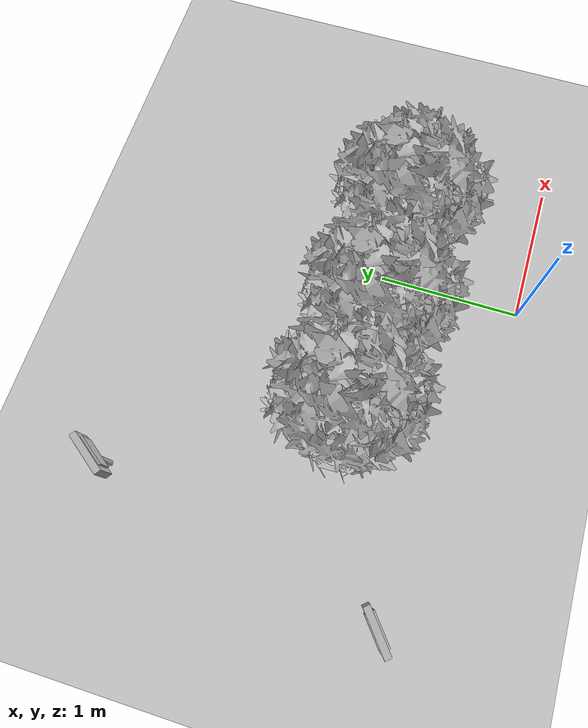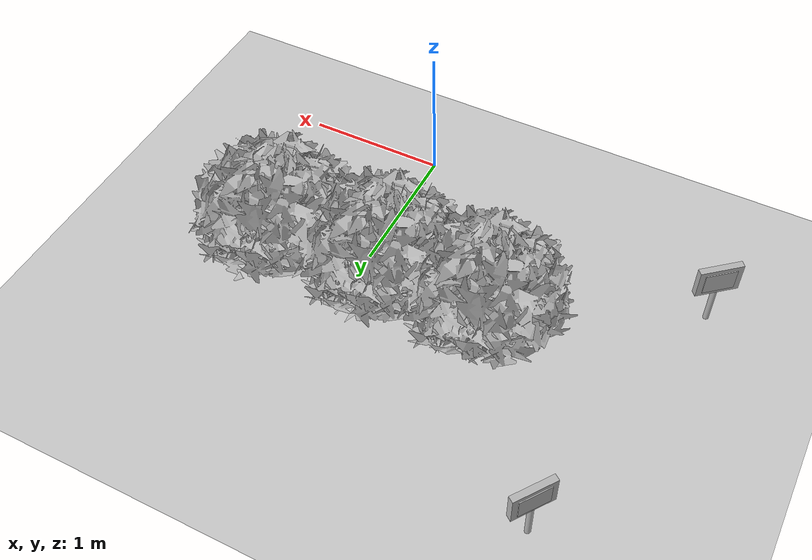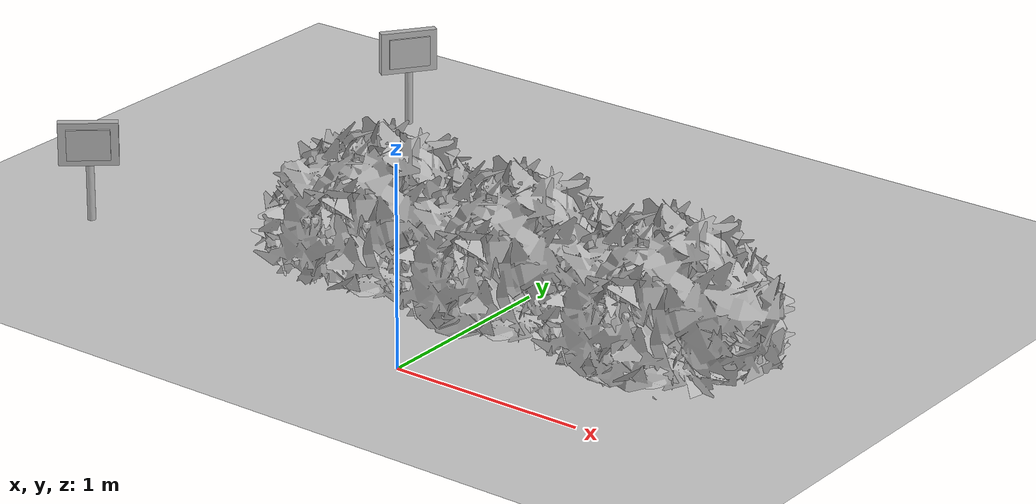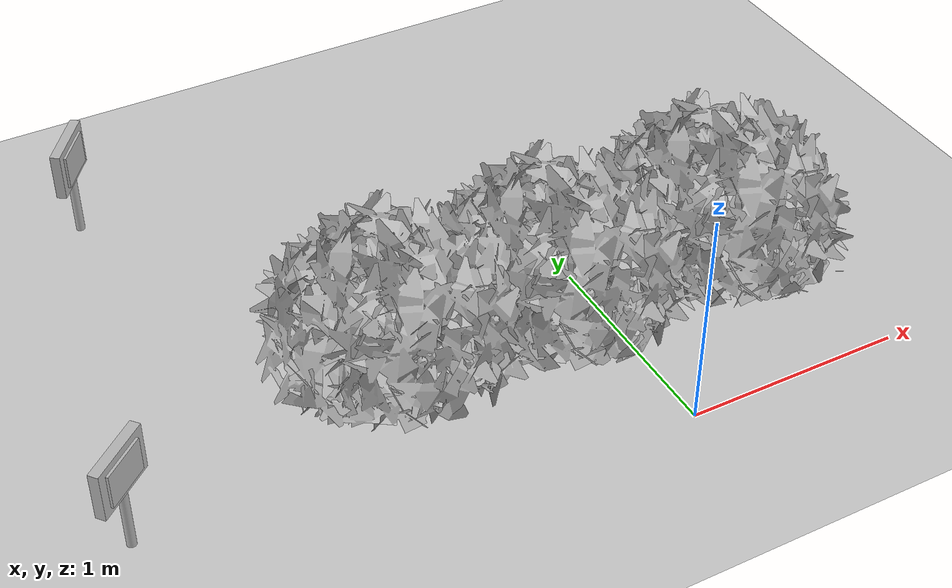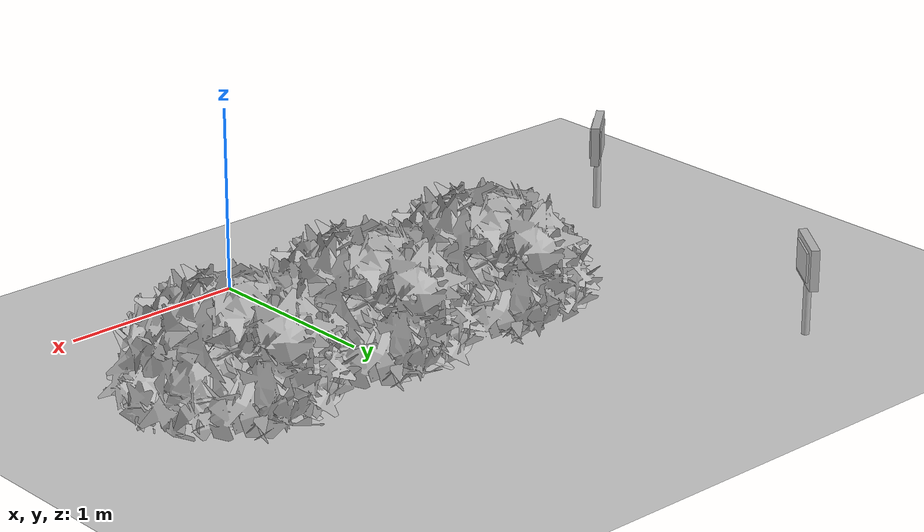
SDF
<sdf version="1.7">
 <world name="default">
  <model name="ground_plane">
   <static>1</static>
   <link name="link">
    <collision name="collision">
     <geometry><plane><normal>0 0 1</normal><size>100 100</size></plane></geometry>
     <surface><friction><ode><mu>100</mu><mu2>50</mu2></ode></friction></surface>
    </collision>
    <visual name="visual">
     <cast_shadows>0</cast_shadows>
     <geometry><plane><normal>0 0 1</normal><size>100 100</size></plane></geometry>
     <material>
      <script><uri>file://media/materials/scripts/gazebo.material</uri><name>Gazebo/Grey</name></script>
     </material>
    </visual>
   </link>
  </model>
  <model name="abbfre">
   <link name="link_0">
    <inertial>
     <mass>1</mass>
     <inertia>
      <ixx>0.166667</ixx>
      <ixy>0</ixy>
      <ixz>0</ixz>
      <iyy>0.166667</iyy>
      <iyz>0</iyz>
      <izz>0.166667</izz>
     </inertia>
    </inertial>
    <pose>0 0 -0 1.60917 -0 0</pose>
    <visual name="visual">
     <geometry><mesh><uri>model://abbfre/meshes/arbufres.obj</uri><scale>1 1 1</scale></mesh></geometry>
    </visual>
    <collision name="collision">
     <geometry><mesh><uri>model://abbfre/meshes/arbufres.obj</uri><scale>1 1 1</scale></mesh></geometry>
     <surface>
      <friction>
       <ode><mu>1</mu><mu2>1</mu2><fdir1>0 0 0</fdir1><slip1>0</slip1><slip2>0</slip2></ode>
       <torsional>
        <coefficient>1</coefficient>
        <patch_radius>0</patch_radius>
        <surface_radius>0</surface_radius>
        <use_patch_radius>1</use_patch_radius>
        <ode><slip>0</slip></ode>
       </torsional>
      </friction>
      <bounce><restitution_coefficient>0</restitution_coefficient><threshold>1e+06</threshold></bounce>
      <contact>
       <collide_without_contact>0</collide_without_contact>
       <collide_without_contact_bitmask>1</collide_without_contact_bitmask>
       <collide_bitmask>1</collide_bitmask>
       <ode>
        <soft_cfm>0</soft_cfm>
        <soft_erp>0.2</soft_erp>
        <kp>1e+13</kp>
        <kd>1</kd>
        <max_vel>0.01</max_vel>
        <min_depth>0</min_depth>
       </ode>
       <bullet>
        <split_impulse>1</split_impulse>
        <split_impulse_penetration_threshold>-0.01</split_impulse_penetration_threshold>
        <soft_cfm>0</soft_cfm>
        <soft_erp>0.2</soft_erp>
        <kp>1e+13</kp>
        <kd>1</kd>
       </bullet>
      </contact>
     </surface>
    </collision>
   </link>
   <static>1</static>
   <pose>-0.04815 1.09701 0 0 -0 0</pose>
  </model>
  <model name="letrero_fresa_0">
   <link name="link_0">
    <inertial>
     <mass>0.00543151</mass>
     <inertia>
      <ixx>4.90351e-06</ixx>
      <ixy>0</ixy>
      <ixz>0</ixz>
      <iyy>4.90351e-06</iyy>
      <iyz>0</iyz>
      <izz>1.12837e-07</izz>
     </inertia>
    </inertial>
    <pose>0.002372 -0.000902 -0.178803 0 -0 0</pose>
    <visual name="visual">
     <geometry><cylinder><radius>0.0203836</radius><length>0.327243</length></cylinder></geometry>
     <material>
      <lighting>1</lighting>
      <script>
       <uri>model://letrero_fresa/madera/scripts</uri>
       <uri>model://letrero_fresa/madera/textures</uri>
       <name>textur/madera</name>
      </script>
      <shader type="pixel"/>
      <emissive>0 0 0 1</emissive>
     </material>
    </visual>
    <collision name="collision">
     <geometry><cylinder><radius>0.020384</radius><length>0.327243</length></cylinder></geometry>
     <surface>
      <friction>
       <ode><mu>1</mu><mu2>1</mu2><fdir1>0 0 0</fdir1><slip1>0</slip1><slip2>0</slip2></ode>
       <torsional>
        <coefficient>1</coefficient>
        <patch_radius>0</patch_radius>
        <surface_radius>0</surface_radius>
        <use_patch_radius>1</use_patch_radius>
        <ode><slip>0</slip></ode>
       </torsional>
      </friction>
      <bounce><restitution_coefficient>0</restitution_coefficient><threshold>1e+06</threshold></bounce>
      <contact>
       <collide_without_contact>0</collide_without_contact>
       <collide_without_contact_bitmask>1</collide_without_contact_bitmask>
       <collide_bitmask>1</collide_bitmask>
       <ode>
        <soft_cfm>0</soft_cfm>
        <soft_erp>0.2</soft_erp>
        <kp>1e+13</kp>
        <kd>1</kd>
        <max_vel>0.01</max_vel>
        <min_depth>0</min_depth>
       </ode>
       <bullet>
        <split_impulse>1</split_impulse>
        <split_impulse_penetration_threshold>-0.01</split_impulse_penetration_threshold>
        <soft_cfm>0</soft_cfm>
        <soft_erp>0.2</soft_erp>
        <kp>1e+13</kp>
        <kd>1</kd>
       </bullet>
      </contact>
     </surface>
    </collision>
   </link>
   <link name="link_1">
    <inertial>
     <mass>0.00299633</mass>
     <inertia>
      <ixx>1.27855e-05</ixx>
      <ixy>0</ixy>
      <ixz>0</ixz>
      <iyy>3.42923e-05</iyy>
      <iyz>0</iyz>
      <izz>2.25402e-05</izz>
     </inertia>
    </inertial>
    <pose>-0.001685 -0.003559 0.089666 0 -0 0</pose>
    <visual name="visual">
     <geometry><box><size>0.296988 0.04549 0.221665</size></box></geometry>
     <material>
      <lighting>1</lighting>
      <script>
       <uri>model://letrero_fresa/madera/scripts</uri>
       <uri>model://letrero_fresa/madera/textures</uri>
       <name>textur/madera</name>
      </script>
      <shader type="pixel"/>
      <emissive>0 0 0 1</emissive>
     </material>
    </visual>
    <collision name="collision">
     <geometry><box><size>0.296988 0.04549 0.221665</size></box></geometry>
     <surface>
      <friction>
       <ode><mu>1</mu><mu2>1</mu2><fdir1>0 0 0</fdir1><slip1>0</slip1><slip2>0</slip2></ode>
       <torsional>
        <coefficient>1</coefficient>
        <patch_radius>0</patch_radius>
        <surface_radius>0</surface_radius>
        <use_patch_radius>1</use_patch_radius>
        <ode><slip>0</slip></ode>
       </torsional>
      </friction>
      <bounce><restitution_coefficient>0</restitution_coefficient><threshold>1e+06</threshold></bounce>
      <contact>
       <collide_without_contact>0</collide_without_contact>
       <collide_without_contact_bitmask>1</collide_without_contact_bitmask>
       <collide_bitmask>1</collide_bitmask>
       <ode>
        <soft_cfm>0</soft_cfm>
        <soft_erp>0.2</soft_erp>
        <kp>1e+13</kp>
        <kd>1</kd>
        <max_vel>0.01</max_vel>
        <min_depth>0</min_depth>
       </ode>
       <bullet>
        <split_impulse>1</split_impulse>
        <split_impulse_penetration_threshold>-0.01</split_impulse_penetration_threshold>
        <soft_cfm>0</soft_cfm>
        <soft_erp>0.2</soft_erp>
        <kp>1e+13</kp>
        <kd>1</kd>
       </bullet>
      </contact>
     </surface>
    </collision>
   </link>
   <link name="link_2">
    <inertial>
     <mass>0.00219695</mass>
     <inertia>
      <ixx>5.34209e-06</ixx>
      <ixy>0</ixy>
      <ixz>0</ixz>
      <iyy>1.31531e-05</iyy>
      <iyz>0</iyz>
      <izz>9.31738e-06</izz>
     </inertia>
    </inertial>
    <pose>-0.001275 -0.005928 0.089136 0 -0 0</pose>
    <visual name="visual">
     <geometry><box><size>0.216284 0.06414 0.15832</size></box></geometry>
     <material>
      <lighting>1</lighting>
      <script>
       <uri>model://letrero_fresa/materials/scripts</uri>
       <uri>model://letrero_fresa/materials/textures</uri>
       <name>textur/difre</name>
      </script>
      <shader type="pixel"/>
      <emissive>0 0 0 1</emissive>
     </material>
    </visual>
    <collision name="collision">
     <geometry><box><size>0.216284 0.06414 0.15832</size></box></geometry>
     <surface>
      <friction>
       <ode><mu>1</mu><mu2>1</mu2><fdir1>0 0 0</fdir1><slip1>0</slip1><slip2>0</slip2></ode>
       <torsional>
        <coefficient>1</coefficient>
        <patch_radius>0</patch_radius>
        <surface_radius>0</surface_radius>
        <use_patch_radius>1</use_patch_radius>
        <ode><slip>0</slip></ode>
       </torsional>
      </friction>
      <bounce><restitution_coefficient>0</restitution_coefficient><threshold>1e+06</threshold></bounce>
      <contact>
       <collide_without_contact>0</collide_without_contact>
       <collide_without_contact_bitmask>1</collide_without_contact_bitmask>
       <collide_bitmask>1</collide_bitmask>
       <ode>
        <soft_cfm>0</soft_cfm>
        <soft_erp>0.2</soft_erp>
        <kp>1e+13</kp>
        <kd>1</kd>
        <max_vel>0.01</max_vel>
        <min_depth>0</min_depth>
       </ode>
       <bullet>
        <split_impulse>1</split_impulse>
        <split_impulse_penetration_threshold>-0.01</split_impulse_penetration_threshold>
        <soft_cfm>0</soft_cfm>
        <soft_erp>0.2</soft_erp>
        <kp>1e+13</kp>
        <kd>1</kd>
       </bullet>
      </contact>
     </surface>
    </collision>
   </link>
   <joint name="link_0_JOINT_1" type="fixed">
    <parent>link_0</parent>
    <child>link_1</child>
    <physics>
     <ode><limit><cfm>0</cfm><erp>0.2</erp></limit><suspension><cfm>0</cfm><erp>0.2</erp></suspension></ode>
    </physics>
   </joint>
   <joint name="link_0_JOINT_2" type="fixed">
    <parent>link_0</parent>
    <child>link_2</child>
    <physics>
     <ode><limit><cfm>0</cfm><erp>0.2</erp></limit><suspension><cfm>0</cfm><erp>0.2</erp></suspension></ode>
    </physics>
   </joint>
   <static>1</static>
   <pose>-2.26221 0.443866 0.309666 0 -0 0.697556</pose>
  </model>
  <model name="letrero_fresa_4">
   <link name="link_0">
    <inertial>
     <mass>0.00543151</mass>
     <inertia>
      <ixx>4.90351e-06</ixx>
      <ixy>0</ixy>
      <ixz>0</ixz>
      <iyy>4.90351e-06</iyy>
      <iyz>0</iyz>
      <izz>1.12837e-07</izz>
     </inertia>
    </inertial>
    <pose>0.002372 -0.000902 -0.178803 0 -0 0</pose>
    <visual name="visual">
     <geometry><cylinder><radius>0.0203836</radius><length>0.327243</length></cylinder></geometry>
     <material>
      <lighting>1</lighting>
      <script>
       <uri>model://letrero_fresa/madera/scripts</uri>
       <uri>model://letrero_fresa/madera/textures</uri>
       <name>textur/madera</name>
      </script>
      <shader type="pixel"/>
      <emissive>0 0 0 1</emissive>
     </material>
    </visual>
    <collision name="collision">
     <geometry><cylinder><radius>0.020384</radius><length>0.327243</length></cylinder></geometry>
     <surface>
      <friction>
       <ode><mu>1</mu><mu2>1</mu2><fdir1>0 0 0</fdir1><slip1>0</slip1><slip2>0</slip2></ode>
       <torsional>
        <coefficient>1</coefficient>
        <patch_radius>0</patch_radius>
        <surface_radius>0</surface_radius>
        <use_patch_radius>1</use_patch_radius>
        <ode><slip>0</slip></ode>
       </torsional>
      </friction>
      <bounce><restitution_coefficient>0</restitution_coefficient><threshold>1e+06</threshold></bounce>
      <contact>
       <collide_without_contact>0</collide_without_contact>
       <collide_without_contact_bitmask>1</collide_without_contact_bitmask>
       <collide_bitmask>1</collide_bitmask>
       <ode>
        <soft_cfm>0</soft_cfm>
        <soft_erp>0.2</soft_erp>
        <kp>1e+13</kp>
        <kd>1</kd>
        <max_vel>0.01</max_vel>
        <min_depth>0</min_depth>
       </ode>
       <bullet>
        <split_impulse>1</split_impulse>
        <split_impulse_penetration_threshold>-0.01</split_impulse_penetration_threshold>
        <soft_cfm>0</soft_cfm>
        <soft_erp>0.2</soft_erp>
        <kp>1e+13</kp>
        <kd>1</kd>
       </bullet>
      </contact>
     </surface>
    </collision>
   </link>
   <link name="link_1">
    <inertial>
     <mass>0.00299633</mass>
     <inertia>
      <ixx>1.27855e-05</ixx>
      <ixy>0</ixy>
      <ixz>0</ixz>
      <iyy>3.42923e-05</iyy>
      <iyz>0</iyz>
      <izz>2.25402e-05</izz>
     </inertia>
    </inertial>
    <pose>-0.001685 -0.003559 0.089666 0 -0 0</pose>
    <visual name="visual">
     <geometry><box><size>0.296988 0.04549 0.221665</size></box></geometry>
     <material>
      <lighting>1</lighting>
      <script>
       <uri>model://letrero_fresa/madera/scripts</uri>
       <uri>model://letrero_fresa/madera/textures</uri>
       <name>textur/madera</name>
      </script>
      <shader type="pixel"/>
      <emissive>0 0 0 1</emissive>
     </material>
    </visual>
    <collision name="collision">
     <geometry><box><size>0.296988 0.04549 0.221665</size></box></geometry>
     <surface>
      <friction>
       <ode><mu>1</mu><mu2>1</mu2><fdir1>0 0 0</fdir1><slip1>0</slip1><slip2>0</slip2></ode>
       <torsional>
        <coefficient>1</coefficient>
        <patch_radius>0</patch_radius>
        <surface_radius>0</surface_radius>
        <use_patch_radius>1</use_patch_radius>
        <ode><slip>0</slip></ode>
       </torsional>
      </friction>
      <bounce><restitution_coefficient>0</restitution_coefficient><threshold>1e+06</threshold></bounce>
      <contact>
       <collide_without_contact>0</collide_without_contact>
       <collide_without_contact_bitmask>1</collide_without_contact_bitmask>
       <collide_bitmask>1</collide_bitmask>
       <ode>
        <soft_cfm>0</soft_cfm>
        <soft_erp>0.2</soft_erp>
        <kp>1e+13</kp>
        <kd>1</kd>
        <max_vel>0.01</max_vel>
        <min_depth>0</min_depth>
       </ode>
       <bullet>
        <split_impulse>1</split_impulse>
        <split_impulse_penetration_threshold>-0.01</split_impulse_penetration_threshold>
        <soft_cfm>0</soft_cfm>
        <soft_erp>0.2</soft_erp>
        <kp>1e+13</kp>
        <kd>1</kd>
       </bullet>
      </contact>
     </surface>
    </collision>
   </link>
   <link name="link_2">
    <inertial>
     <mass>0.00219695</mass>
     <inertia>
      <ixx>5.34209e-06</ixx>
      <ixy>0</ixy>
      <ixz>0</ixz>
      <iyy>1.31531e-05</iyy>
      <iyz>0</iyz>
      <izz>9.31738e-06</izz>
     </inertia>
    </inertial>
    <pose>-0.001275 -0.005928 0.089136 0 -0 0</pose>
    <visual name="visual">
     <geometry><box><size>0.216284 0.06414 0.15832</size></box></geometry>
     <material>
      <lighting>1</lighting>
      <script>
       <uri>model://letrero_fresa/materials/scripts</uri>
       <uri>model://letrero_fresa/materials/textures</uri>
       <name>textur/difre</name>
      </script>
      <shader type="pixel"/>
      <emissive>0 0 0 1</emissive>
     </material>
    </visual>
    <collision name="collision">
     <geometry><box><size>0.216284 0.06414 0.15832</size></box></geometry>
     <surface>
      <friction>
       <ode><mu>1</mu><mu2>1</mu2><fdir1>0 0 0</fdir1><slip1>0</slip1><slip2>0</slip2></ode>
       <torsional>
        <coefficient>1</coefficient>
        <patch_radius>0</patch_radius>
        <surface_radius>0</surface_radius>
        <use_patch_radius>1</use_patch_radius>
        <ode><slip>0</slip></ode>
       </torsional>
      </friction>
      <bounce><restitution_coefficient>0</restitution_coefficient><threshold>1e+06</threshold></bounce>
      <contact>
       <collide_without_contact>0</collide_without_contact>
       <collide_without_contact_bitmask>1</collide_without_contact_bitmask>
       <collide_bitmask>1</collide_bitmask>
       <ode>
        <soft_cfm>0</soft_cfm>
        <soft_erp>0.2</soft_erp>
        <kp>1e+13</kp>
        <kd>1</kd>
        <max_vel>0.01</max_vel>
        <min_depth>0</min_depth>
       </ode>
       <bullet>
        <split_impulse>1</split_impulse>
        <split_impulse_penetration_threshold>-0.01</split_impulse_penetration_threshold>
        <soft_cfm>0</soft_cfm>
        <soft_erp>0.2</soft_erp>
        <kp>1e+13</kp>
        <kd>1</kd>
       </bullet>
      </contact>
     </surface>
    </collision>
   </link>
   <joint name="link_0_JOINT_1" type="fixed">
    <parent>link_0</parent>
    <child>link_1</child>
    <physics>
     <ode><limit><cfm>0</cfm><erp>0.2</erp></limit><suspension><cfm>0</cfm><erp>0.2</erp></suspension></ode>
    </physics>
   </joint>
   <joint name="link_0_JOINT_2" type="fixed">
    <parent>link_0</parent>
    <child>link_2</child>
    <physics>
     <ode><limit><cfm>0</cfm><erp>0.2</erp></limit><suspension><cfm>0</cfm><erp>0.2</erp></suspension></ode>
    </physics>
   </joint>
   <static>1</static>
   <pose>-1.81534 2.39304 0.306565 0 -0 0.947735</pose>
  </model>
 </world>
</sdf>
